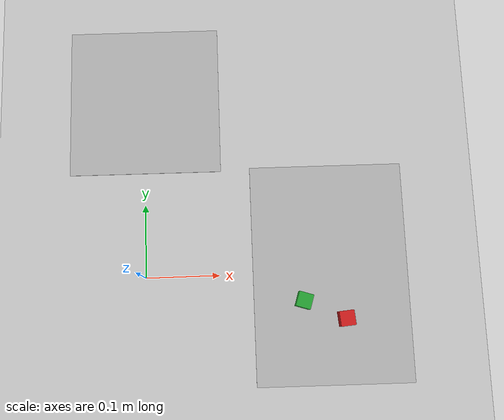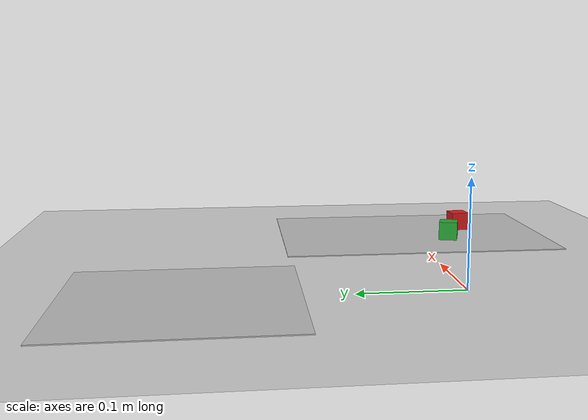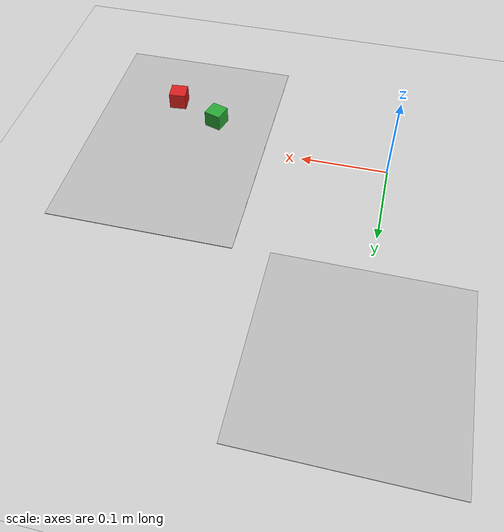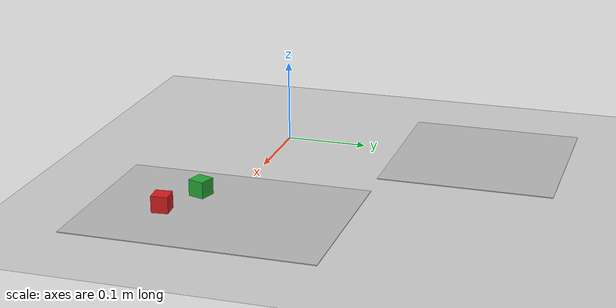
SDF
<sdf version="1.6">
 <world name="default">
  <include><uri>model://sun</uri></include>
  <include><uri>model://ground_plane</uri></include>
  <model name="workspace_1">
   <include><uri>model://workspace_1</uri></include>
   <pose>0.25 0.0 0.0005 0.0 0.0 0.0</pose>
  </model>
  <model name="workspace_grille">
   <include><uri>model://workspace_grille</uri></include>
   <pose>0.0 0.25 0.0005 0.0 0.0 1.57</pose>
  </model>
  <model name="cube_red">
   <include><uri>model://cube_red</uri></include>
   <pose>0.267 -0.062 0.011 0.0 0.0 0.1</pose>
  </model>
  <model name="cube_green">
   <include><uri>model://cube_green</uri></include>
   <pose>0.212 -0.0369 0.011 0 0 -0.3</pose>
  </model>
  <physics name="default_physics" default="0" type="ode">
   <max_step_size>0.001</max_step_size>
   <real_time_factor>1</real_time_factor>
   <real_time_update_rate>1000</real_time_update_rate>
  </physics>
 </world>
</sdf>

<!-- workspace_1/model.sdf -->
<sdf version='1.6'>
    <model name='Workspace1'>
        <link name='workspace_link'>
            <inertial>
                <mass>1000.0</mass>
                <inertia>
                    <ixx>4.508</ixx>
                    <ixy>0</ixy>
                    <ixz>0</ixz>
                    <iyy>8.184</iyy>
                    <iyz>0</iyz>
                    <izz>11.026</izz>
                </inertia>
                <pose frame=''>0 0 0 0 -0 0</pose>
            </inertial>
            <pose frame=''>0 0 0 0 -0 0</pose>
            <gravity>1</gravity>
            <self_collide>0</self_collide>
            <kinematic>0</kinematic>
            <enable_wind>0</enable_wind>

            <visual name='visual'>
                <cast_shadows>false</cast_shadows>
                <pose frame=''>0 0 0 0 0 0</pose>
                <geometry>
                    <box>
                        <size>0.21 0.297 0.001</size>
                    </box>
                </geometry>
                <material>
                    <script>
                        <uri>media://materials/scripts/workspace.material</uri>
                        <name>Niryo/Workspace1</name>
                    </script>
                </material>

                <transparency>0</transparency>
                <cast_shadows>1</cast_shadows>
            </visual>
            <collision name='collision'>
                <laser_retro>0</laser_retro>
                <max_contacts>10</max_contacts>
                <pose frame=''>0 0 0 0 -0 0</pose>
                <geometry>
                    <box>
                        <size>0.21 0.297 0.001</size>
                    </box>
                </geometry>
                <surface>
                    <friction>
                        <ode>
                            <mu>1</mu>
                            <mu2>1</mu2>
                            <fdir1>0 0 0</fdir1>
                            <slip1>0</slip1>
                            <slip2>0</slip2>
                        </ode>
                        <torsional>
                            <coefficient>1</coefficient>
                            <patch_radius>0</patch_radius>
                            <surface_radius>0</surface_radius>
                            <use_patch_radius>1</use_patch_radius>
                            <ode>
                                <slip>0</slip>
                            </ode>
                        </torsional>
                    </friction>
                    <bounce>
                        <restitution_coefficient>0</restitution_coefficient>
                        <threshold>1e+06</threshold>
                    </bounce>
                    <contact>
                        <collide_without_contact>0</collide_without_contact>
                        <collide_without_contact_bitmask>1</collide_without_contact_bitmask>
                        <collide_bitmask>1</collide_bitmask>
                        <ode>
                            <soft_cfm>0</soft_cfm>
                            <soft_erp>0.2</soft_erp>
                            <kp>1e+13</kp>
                            <kd>1</kd>
                            <max_vel>0.01</max_vel>
                            <min_depth>0</min_depth>
                        </ode>
                        <bullet>
                            <split_impulse>1</split_impulse>
                            <split_impulse_penetration_threshold>-0.01</split_impulse_penetration_threshold>
                            <soft_cfm>0</soft_cfm>
                            <soft_erp>0.2</soft_erp>
                            <kp>1e+13</kp>
                            <kd>1</kd>
                        </bullet>
                    </contact>
                </surface>
            </collision>
        </link>
        <static>0</static>
        <allow_auto_disable>1</allow_auto_disable>
    </model>
</sdf>

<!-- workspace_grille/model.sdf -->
<sdf version='1.6'>
    <model name='WorkspaceGrille'>
        <link name='workspace_link'>
            <inertial>
                <mass>1000.0</mass>
                <inertia>
                    <ixx>4.508</ixx>
                    <ixy>0</ixy>
                    <ixz>0</ixz>
                    <iyy>8.184</iyy>
                    <iyz>0</iyz>
                    <izz>11.026</izz>
                </inertia>
                <pose frame=''>0 0 0 0 -0 0</pose>
            </inertial>
            <pose frame=''>0 0 0 0 -0 0</pose>
            <gravity>1</gravity>
            <self_collide>0</self_collide>
            <kinematic>0</kinematic>
            <enable_wind>0</enable_wind>

            <visual name='visual'>
                <cast_shadows>false</cast_shadows>
                <pose frame=''>0 0 0 0 0 0</pose>
                <geometry>
                    <box>
                        <size>0.21 0.21 0.001</size>
                    </box>
                </geometry>
                <material>
                    <script>
                        <uri>media://materials/scripts/workspace.material</uri>
                        <name>Niryo/WorkspaceGrille</name>
                    </script>
                </material>

                <transparency>0</transparency>
                <cast_shadows>1</cast_shadows>
            </visual>
            <collision name='collision'>
                <laser_retro>0</laser_retro>
                <max_contacts>10</max_contacts>
                <pose frame=''>0 0 0 0 -0 0</pose>
                <geometry>
                    <box>
                        <size>0.21 0.21 0.001</size>
                    </box>
                </geometry>
                <surface>
                    <friction>
                        <ode>
                            <mu>1</mu>
                            <mu2>1</mu2>
                            <fdir1>0 0 0</fdir1>
                            <slip1>0</slip1>
                            <slip2>0</slip2>
                        </ode>
                        <torsional>
                            <coefficient>1</coefficient>
                            <patch_radius>0</patch_radius>
                            <surface_radius>0</surface_radius>
                            <use_patch_radius>1</use_patch_radius>
                            <ode>
                                <slip>0</slip>
                            </ode>
                        </torsional>
                    </friction>
                    <bounce>
                        <restitution_coefficient>0</restitution_coefficient>
                        <threshold>1e+06</threshold>
                    </bounce>
                    <contact>
                        <collide_without_contact>0</collide_without_contact>
                        <collide_without_contact_bitmask>1</collide_without_contact_bitmask>
                        <collide_bitmask>1</collide_bitmask>
                        <ode>
                            <soft_cfm>0</soft_cfm>
                            <soft_erp>0.2</soft_erp>
                            <kp>1e+13</kp>
                            <kd>1</kd>
                            <max_vel>0.01</max_vel>
                            <min_depth>0</min_depth>
                        </ode>
                        <bullet>
                            <split_impulse>1</split_impulse>
                            <split_impulse_penetration_threshold>-0.01</split_impulse_penetration_threshold>
                            <soft_cfm>0</soft_cfm>
                            <soft_erp>0.2</soft_erp>
                            <kp>1e+13</kp>
                            <kd>1</kd>
                        </bullet>
                    </contact>
                </surface>
            </collision>
        </link>
        <static>0</static>
        <allow_auto_disable>1</allow_auto_disable>
    </model>
</sdf>

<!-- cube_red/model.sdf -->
<sdf version='1.6'>
  <model name='cube_red'>
    <link name='link_1'>
      <inertial>
        <mass>1e-4</mass>
        <inertia>
          <ixx>1.0e-8</ixx>
          <ixy>0</ixy>
          <ixz>0</ixz>
          <iyy>1.0e-8</iyy>
          <iyz>0</iyz>
          <izz>1.0e-8</izz>
        </inertia>
        <pose frame=''>0 0 0 0 -0 0</pose>
      </inertial>
      <pose frame=''>0 0 0 0 -0 0</pose>
      <gravity>1</gravity>
      <self_collide>0</self_collide>
      <kinematic>0</kinematic>
      <enable_wind>0</enable_wind>
      <visual name='visual'>
        <pose frame=''>0 0 0 0 -0 0</pose>
        <geometry>
          <box>
            <size>0.02 0.02 0.02</size>
          </box>
        </geometry>
        <material>
          <lighting>1</lighting>
          <script>
            <uri>file://media/materials/scripts/gazebo.material</uri>
            <name>Gazebo/Grey</name>
          </script>
          <shader type='vertex'>
            <normal_map>__default__</normal_map>
          </shader>
          <ambient>0.643 0 0 1</ambient>
          <diffuse>0.835 0.114 0.114 1</diffuse>
          <specular>0.333 0.341 0.325 1</specular>
          <emissive>0 0 0 1</emissive>
        </material>
        <transparency>0</transparency>
        <cast_shadows>1</cast_shadows>
      </visual>
      <collision name='collision'>
        <laser_retro>0</laser_retro>
        <max_contacts>50</max_contacts>
        <pose frame=''>0 0 0 0 -0 0</pose>
        <geometry>
          <box>
            <size>0.02 0.02 0.02</size>
          </box>
        </geometry>
        <surface>
          <friction>
            <ode>
              <mu>1e+6</mu>
              <mu2>1e+6</mu2>
            </ode>
            <torsional>
              <coefficient>1</coefficient>
              <patch_radius>0</patch_radius>
              <surface_radius>0</surface_radius>
              <use_patch_radius>1</use_patch_radius>
              <ode>
                <slip>0</slip>
              </ode>
            </torsional>
          </friction>
          <bounce>
            <restitution_coefficient>0</restitution_coefficient>
            <threshold>1e+06</threshold>
          </bounce>
          <contact>
            <collide_without_contact>0</collide_without_contact>
            <collide_without_contact_bitmask>1</collide_without_contact_bitmask>
            <collide_bitmask>1</collide_bitmask>
            <ode>
              <soft_cfm>0</soft_cfm>
              <soft_erp>0.2</soft_erp>
              <kp>1e+13</kp>
              <kd>1</kd>
              <max_vel>0.0</max_vel>
              <min_depth>0.002</min_depth>
            </ode>
            <bullet>
              <split_impulse>1</split_impulse>
              <split_impulse_penetration_threshold>-0.01</split_impulse_penetration_threshold>
              <soft_cfm>0</soft_cfm>
              <soft_erp>0.2</soft_erp>
              <kp>1e+13</kp>
              <kd>1</kd>
            </bullet>
          </contact>
        </surface>
      </collision>
    </link>
    <static>0</static>
    <allow_auto_disable>1</allow_auto_disable>
  </model>
</sdf>

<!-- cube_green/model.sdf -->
<sdf version='1.6'>
  <model name='cube_green'>
    <link name='link_1'>
      <inertial>
        <mass>1e-4</mass>
        <inertia>
          <ixx>1.0e-8</ixx>
          <ixy>0</ixy>
          <ixz>0</ixz>
          <iyy>1.0e-8</iyy>
          <iyz>0</iyz>
          <izz>1.0e-8</izz>
        </inertia>
        <pose frame=''>0 0 0 0 -0 0</pose>
      </inertial>
      <pose frame=''>0 0 0 0 -0 0</pose>
      <gravity>1</gravity>
      <self_collide>0</self_collide>
      <kinematic>0</kinematic>
      <enable_wind>0</enable_wind>
      <visual name='visual'>
        <pose frame=''>0 0 0 0 -0 0</pose>
        <geometry>
          <box>
            <size>0.02 0.02 0.02</size>
          </box>
        </geometry>
        <material>
          <lighting>1</lighting>
          <script>
            <uri>file://media/materials/scripts/gazebo.material</uri>
            <name>Gazebo/Green</name>
          </script>
          <shader type='vertex'>
            <normal_map>__default__</normal_map>
          </shader>
          <ambient>0.208 0.706 0.298 1</ambient>
          <diffuse>0.451 0.824 0.082 1</diffuse>
          <specular>0.18 0.204 0.212 1</specular>
          <emissive>0 0 0 1</emissive>
        </material>
        <transparency>0</transparency>
        <cast_shadows>1</cast_shadows>
      </visual>
      <collision name='collision'>
        <laser_retro>0</laser_retro>
        <max_contacts>50</max_contacts>
        <pose frame=''>0 0 0 0 -0 0</pose>
        <geometry>
          <box>
            <size>0.02 0.02 0.02</size>
          </box>
        </geometry>
        <surface>
          <friction>
            <ode>
              <mu>1e+6</mu>
              <mu2>1e+6</mu2>
            </ode>
            <torsional>
              <coefficient>1</coefficient>
              <patch_radius>0</patch_radius>
              <surface_radius>0</surface_radius>
              <use_patch_radius>1</use_patch_radius>
              <ode>
                <slip>0</slip>
              </ode>
            </torsional>
          </friction>
          <bounce>
            <restitution_coefficient>0</restitution_coefficient>
            <threshold>1e+06</threshold>
          </bounce>
          <contact>
            <collide_without_contact>0</collide_without_contact>
            <collide_without_contact_bitmask>1</collide_without_contact_bitmask>
            <collide_bitmask>1</collide_bitmask>
            <ode>
              <soft_cfm>0</soft_cfm>
              <soft_erp>0.2</soft_erp>
              <kp>1e+13</kp>
              <kd>1</kd>
              <max_vel>0.0</max_vel>
              <min_depth>0.002</min_depth>
            </ode>
            <bullet>
              <split_impulse>1</split_impulse>
              <split_impulse_penetration_threshold>-0.01</split_impulse_penetration_threshold>
              <soft_cfm>0</soft_cfm>
              <soft_erp>0.2</soft_erp>
              <kp>1e+13</kp>
              <kd>1</kd>
            </bullet>
          </contact>
        </surface>
      </collision>
    </link>
    <static>0</static>
    <allow_auto_disable>1</allow_auto_disable>
  </model>
</sdf>
